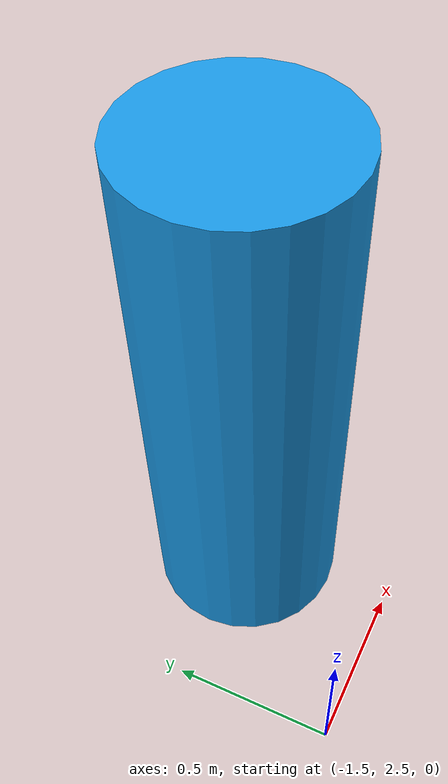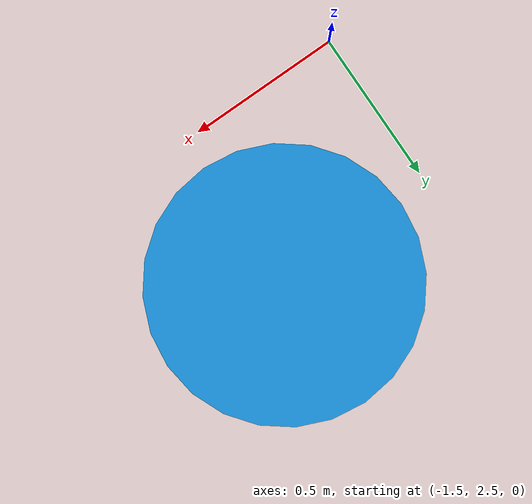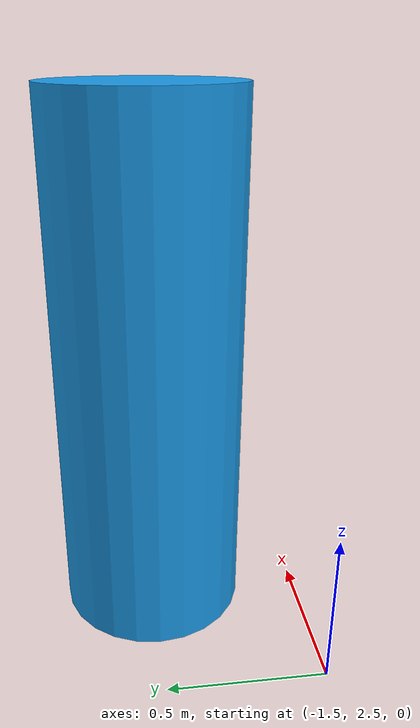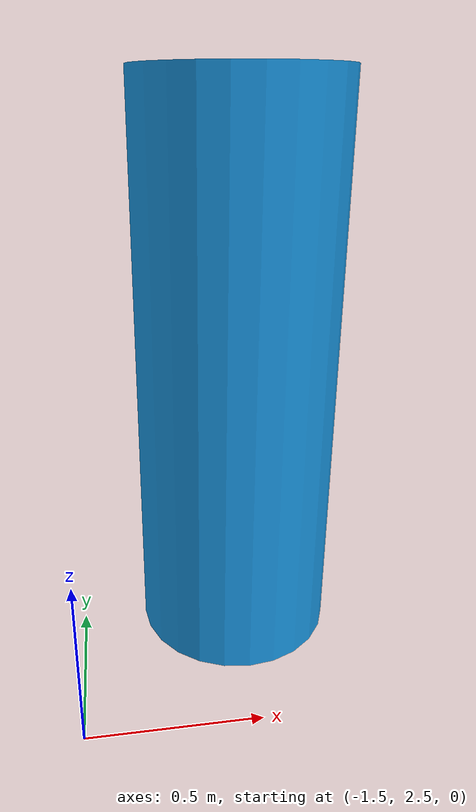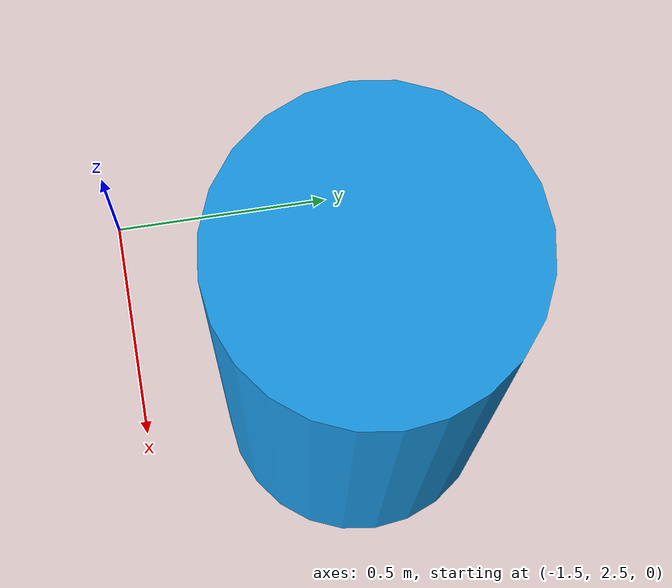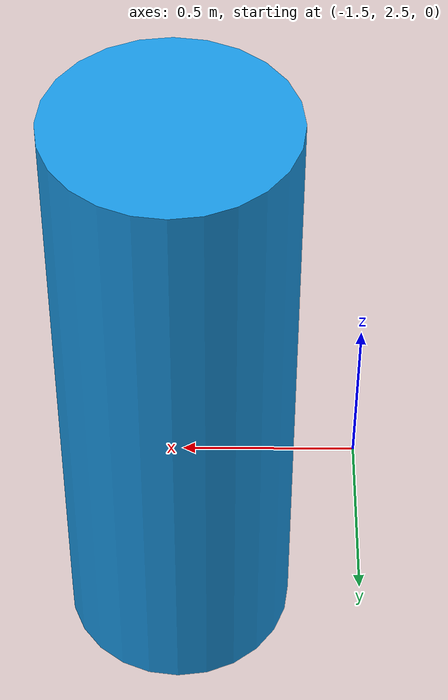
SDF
<sdf version='1.7'>
  <world name='default'>
    <!-- 动态障碍物：圆柱体，命名符合 fake_detector 识别规则 -->
    <model name="dynamic_cylinder_0.6_0.6_1.7">
      <!-- L形轨迹：在左下方，先沿X轴直行，再向下急转 -->
      <!-- 无人机在原点(0,0,0)，朝向向下(-Y)，障碍物在左下方(-X, -Y) -->
      <!-- 初始位置：左下方 (-3, -2, 0) -->
      <pose>-1 3 0 0 0 0</pose>
      <static>0</static>
      <link name="body">
        <inertial>
          <mass>5</mass>
          <inertia>
            <ixx>0.1</ixx>
            <iyy>0.1</iyy>
            <izz>0.1</izz>
            <ixy>0</ixy>
            <ixz>0</ixz>
            <iyz>0</iyz>
          </inertia>
        </inertial>
        <collision name="collision">
          <pose>0 0 0.85 0 0 0</pose>
          <geometry>
            <cylinder>
              <radius>0.3</radius>
              <length>1.7</length>
            </cylinder>
          </geometry>
        </collision>
        <visual name="visual">
          <pose>0 0 0.85 0 0 0</pose>
          <geometry>
            <cylinder>
              <radius>0.3</radius>
              <length>1.7</length>
            </cylinder>
          </geometry>
          <material>
            <ambient>0.1 0.6 0.9 1</ambient>
            <diffuse>0.1 0.6 0.9 1</diffuse>
          </material>
        </visual>
      </link>

      <plugin name="obstacle_motion" filename="libobstaclePathPlugin.so">
        <loop>0</loop> <!-- 单次执行 -->
        <sin>0</sin>
        <velocity>0.4</velocity> <!-- 速度 1 m/s -->
        <angular_velocity>4.0</angular_velocity> <!-- 横向急转 -->
        <path>
          <!-- 阶段1：左下方横向直行（约4秒），从左向右 -->
          <waypoint>-1.0 2.0 0.0</waypoint>
          <waypoint>-3.0 2.0 0.0</waypoint>
          <!-- 阶段2：突然向下急转，形成L形 -->
          <waypoint>-3.0 -2 0.0</waypoint>
        </path>
      </plugin>
    </model>

    <light name='sun' type='directional'>
      <cast_shadows>1</cast_shadows>
      <pose>0 0 10 0 -0 0</pose>
      <diffuse>0.8 0.8 0.8 1</diffuse>
      <specular>0.2 0.2 0.2 1</specular>
      <attenuation>
        <range>1000</range>
        <constant>0.9</constant>
        <linear>0.01</linear>
        <quadratic>0.001</quadratic>
      </attenuation>
      <direction>-0.5 0.1 -0.9</direction>
      <spot>
        <inner_angle>0</inner_angle>
        <outer_angle>0</outer_angle>
        <falloff>0</falloff>
      </spot>
    </light>

    <model name='ground_plane'>
      <static>1</static>
      <link name='link'>
        <collision name='collision'>
          <geometry>
            <plane>
              <normal>0 0 1</normal>
              <size>100 100</size>
            </plane>
          </geometry>
        </collision>
      </link>
    </model>

    <physics type='ode'>
      <max_step_size>0.001</max_step_size>
      <real_time_factor>1</real_time_factor>
      <real_time_update_rate>1000</real_time_update_rate>
    </physics>

    <scene>
      <ambient>0.4 0.4 0.4 1</ambient>
      <background>0.7 0.7 0.7 1</background>
      <shadows>1</shadows>
    </scene>

    <gui fullscreen='0'>
      <camera name='user_camera'>
        <pose>6.39292 -16.0551 24.6198 0 0.913797 2.1162</pose>
        <view_controller>orbit</view_controller>
        <projection_type>perspective</projection_type>
      </camera>
    </gui>
  </world>
</sdf>
